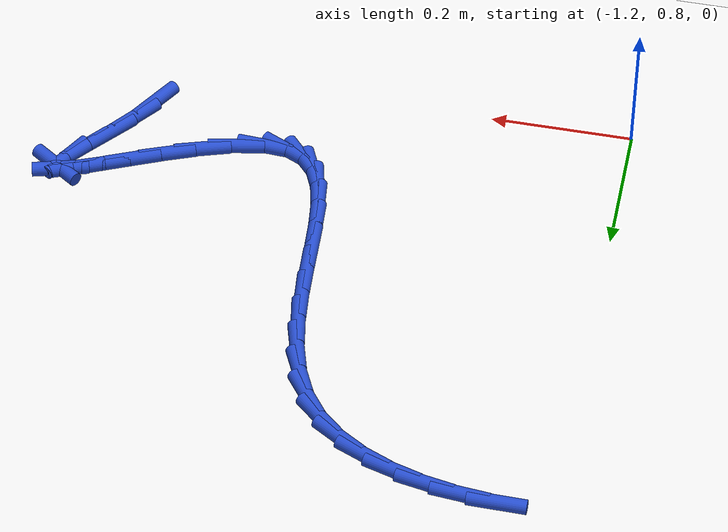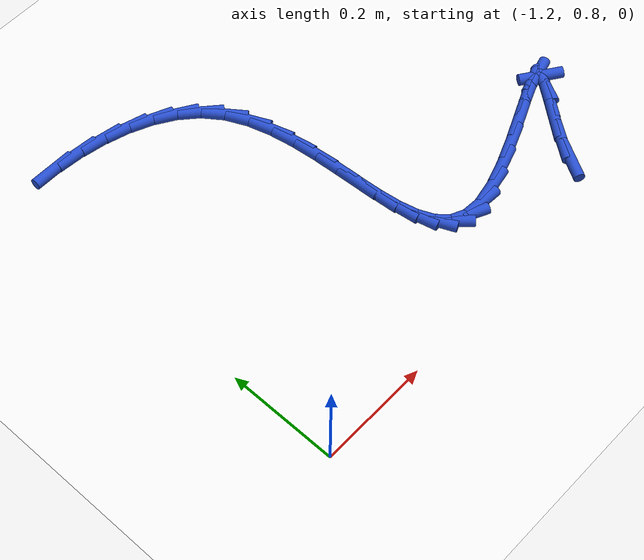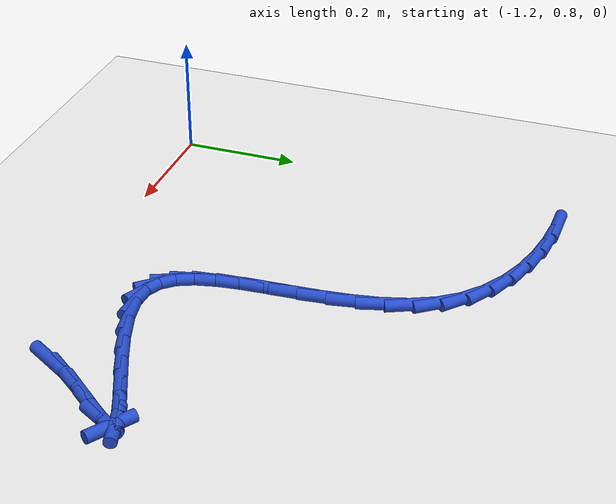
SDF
<sdf version="1.6">
 <world name="default">
  <model name="ground_plane">
   <static>1</static>
   <link name="link">
    <collision name="collision">
     <geometry><plane><normal>0 0 1</normal><size>100 100</size></plane></geometry>
     <surface><friction><ode><mu>100</mu><mu2>50</mu2></ode></friction></surface>
    </collision>
    <visual name="visual">
     <cast_shadows>0</cast_shadows>
     <geometry><plane><normal>0 0 1</normal><size>100 100</size></plane></geometry>
     <material>
      <script><uri>file://media/materials/scripts/gazebo.material</uri><name>Gazebo/WhiteGlow</name></script>
     </material>
    </visual>
   </link>
  </model>
  <model name="line">
   <link name="link_31">
    <pose>-0.5259093899618574 0.8715245335963622 0.01 0 1.57 1.0380452789056749</pose>
    <collision name="collision">
     <geometry><cylinder><radius>0.01</radius><length>0.08</length></cylinder></geometry>
    </collision>
    <visual name="visual">
     <material>
      <script><name>Gazebo/Blue</name><uri>file://media/materials/scripts/gazebo.material</uri></script>
     </material>
     <geometry><cylinder><radius>0.01</radius><length>0.08</length></cylinder></geometry>
    </visual>
   </link>
   <link name="link_32">
    <pose>-0.5056690816337313 0.90585233953516 0.01 0 1.57 0.925611569834618</pose>
    <collision name="collision">
     <geometry><cylinder><radius>0.01</radius><length>0.08</length></cylinder></geometry>
    </collision>
    <visual name="visual">
     <material>
      <script><name>Gazebo/Blue</name><uri>file://media/materials/scripts/gazebo.material</uri></script>
     </material>
     <geometry><cylinder><radius>0.01</radius><length>0.08</length></cylinder></geometry>
    </visual>
   </link>
   <link name="link_33">
    <pose>-0.4786340327649526 0.9417729169115141 0.01 0 1.57 0.8846221475491244</pose>
    <collision name="collision">
     <geometry><cylinder><radius>0.01</radius><length>0.08</length></cylinder></geometry>
    </collision>
    <visual name="visual">
     <material>
      <script><name>Gazebo/Blue</name><uri>file://media/materials/scripts/gazebo.material</uri></script>
     </material>
     <geometry><cylinder><radius>0.01</radius><length>0.08</length></cylinder></geometry>
    </visual>
   </link>
   <link name="link_34">
    <pose>-0.451113894973161 0.975378139658323 0.01 0 1.57 0.9007452691590183</pose>
    <collision name="collision">
     <geometry><cylinder><radius>0.01</radius><length>0.08</length></cylinder></geometry>
    </collision>
    <visual name="visual">
     <material>
      <script><name>Gazebo/Blue</name><uri>file://media/materials/scripts/gazebo.material</uri></script>
     </material>
     <geometry><cylinder><radius>0.01</radius><length>0.08</length></cylinder></geometry>
    </visual>
   </link>
   <link name="link_35">
    <pose>-0.42941831987599555 1.0027598817084835 0.01 0 1.57 1.0646485575879678</pose>
    <collision name="collision">
     <geometry><cylinder><radius>0.01</radius><length>0.08</length></cylinder></geometry>
    </collision>
    <visual name="visual">
     <material>
      <script><name>Gazebo/Blue</name><uri>file://media/materials/scripts/gazebo.material</uri></script>
     </material>
     <geometry><cylinder><radius>0.01</radius><length>0.08</length></cylinder></geometry>
    </visual>
   </link>
   <link name="link_36">
    <pose>-0.41985596835057004 1.020010727504872 0.01 0 1.57 -0.5976320957336914</pose>
    <collision name="collision">
     <geometry><cylinder><radius>0.01</radius><length>0.08</length></cylinder></geometry>
    </collision>
    <visual name="visual">
     <material>
      <script><name>Gazebo/Blue</name><uri>file://media/materials/scripts/gazebo.material</uri></script>
     </material>
     <geometry><cylinder><radius>0.01</radius><length>0.08</length></cylinder></geometry>
    </visual>
   </link>
   <link name="link_37">
    <pose>-0.4267098677380078 1.0246759454191865 0.01 0 1.57 0.2692749755799874</pose>
    <collision name="collision">
     <geometry><cylinder><radius>0.01</radius><length>0.08</length></cylinder></geometry>
    </collision>
    <visual name="visual">
     <material>
      <script><name>Gazebo/Blue</name><uri>file://media/materials/scripts/gazebo.material</uri></script>
     </material>
     <geometry><cylinder><radius>0.01</radius><length>0.08</length></cylinder></geometry>
    </visual>
   </link>
   <link name="link_38">
    <pose>-0.4479818811574569 1.0188053433449307 0.01 0 1.57 0.3935718560412883</pose>
    <collision name="collision">
     <geometry><cylinder><radius>0.01</radius><length>0.08</length></cylinder></geometry>
    </collision>
    <visual name="visual">
     <material>
      <script><name>Gazebo/Blue</name><uri>file://media/materials/scripts/gazebo.material</uri></script>
     </material>
     <geometry><cylinder><radius>0.01</radius><length>0.08</length></cylinder></geometry>
    </visual>
   </link>
   <link name="link_39">
    <pose>-0.480460043892404 1.0053192263104016 0.01 0 1.57 0.422212059788577</pose>
    <collision name="collision">
     <geometry><cylinder><radius>0.01</radius><length>0.08</length></cylinder></geometry>
    </collision>
    <visual name="visual">
     <material>
      <script><name>Gazebo/Blue</name><uri>file://media/materials/scripts/gazebo.material</uri></script>
     </material>
     <geometry><cylinder><radius>0.01</radius><length>0.08</length></cylinder></geometry>
    </visual>
   </link>
   <link name="link_40">
    <pose>-0.5209323912263357 0.9871378993438962 0.01 0 1.57 0.4153252706616437</pose>
    <collision name="collision">
     <geometry><cylinder><radius>0.01</radius><length>0.08</length></cylinder></geometry>
    </collision>
    <visual name="visual">
     <material>
      <script><name>Gazebo/Blue</name><uri>file://media/materials/scripts/gazebo.material</uri></script>
     </material>
     <geometry><cylinder><radius>0.01</radius><length>0.08</length></cylinder></geometry>
    </visual>
   </link>
   <link name="link_41">
    <pose>-0.5661869584427399 0.9671816674737121 0.01 0 1.57 0.38199495099625697</pose>
    <collision name="collision">
     <geometry><cylinder><radius>0.01</radius><length>0.08</length></cylinder></geometry>
    </collision>
    <visual name="visual">
     <material>
      <script><name>Gazebo/Blue</name><uri>file://media/materials/scripts/gazebo.material</uri></script>
     </material>
     <geometry><cylinder><radius>0.01</radius><length>0.08</length></cylinder></geometry>
    </visual>
   </link>
   <link name="link_42">
    <pose>-0.6130117808251029 0.9483708357281462 0.01 0 1.57 0.3154447966175286</pose>
    <collision name="collision">
     <geometry><cylinder><radius>0.01</radius><length>0.08</length></cylinder></geometry>
    </collision>
    <visual name="visual">
     <material>
      <script><name>Gazebo/Blue</name><uri>file://media/materials/scripts/gazebo.material</uri></script>
     </material>
     <geometry><cylinder><radius>0.01</radius><length>0.08</length></cylinder></geometry>
    </visual>
   </link>
   <link name="link_43">
    <pose>-0.6581948936569116 0.9336257091354958 0.01 0 1.57 0.19007090434024412</pose>
    <collision name="collision">
     <geometry><cylinder><radius>0.01</radius><length>0.08</length></cylinder></geometry>
    </collision>
    <visual name="visual">
     <material>
      <script><name>Gazebo/Blue</name><uri>file://media/materials/scripts/gazebo.material</uri></script>
     </material>
     <geometry><cylinder><radius>0.01</radius><length>0.08</length></cylinder></geometry>
    </visual>
   </link>
   <link name="link_44">
    <pose>-0.6985243322216529 0.9258665927240581 0.01 0 1.57 -0.05773627390485298</pose>
    <collision name="collision">
     <geometry><cylinder><radius>0.01</radius><length>0.08</length></cylinder></geometry>
    </collision>
    <visual name="visual">
     <material>
      <script><name>Gazebo/Blue</name><uri>file://media/materials/scripts/gazebo.material</uri></script>
     </material>
     <geometry><cylinder><radius>0.01</radius><length>0.08</length></cylinder></geometry>
    </visual>
   </link>
   <link name="link_45">
    <pose>-0.7310731593778234 0.9277479316556336 0.01 0 1.57 -0.44436669307397236</pose>
    <collision name="collision">
     <geometry><cylinder><radius>0.01</radius><length>0.08</length></cylinder></geometry>
    </collision>
    <visual name="visual">
     <material>
      <script><name>Gazebo/Blue</name><uri>file://media/materials/scripts/gazebo.material</uri></script>
     </material>
     <geometry><cylinder><radius>0.01</radius><length>0.08</length></cylinder></geometry>
    </visual>
   </link>
   <link name="link_46">
    <pose>-0.7555953224692225 0.9394235723645725 0.01 0 1.57 -0.8520096115226901</pose>
    <collision name="collision">
     <geometry><cylinder><radius>0.01</radius><length>0.08</length></cylinder></geometry>
    </collision>
    <visual name="visual">
     <material>
      <script><name>Gazebo/Blue</name><uri>file://media/materials/scripts/gazebo.material</uri></script>
     </material>
     <geometry><cylinder><radius>0.01</radius><length>0.08</length></cylinder></geometry>
    </visual>
   </link>
   <link name="link_47">
    <pose>-0.7733148072370445 0.9596761809281527 0.01 0 1.57 -1.155904057189359</pose>
    <collision name="collision">
     <geometry><cylinder><radius>0.01</radius><length>0.08</length></cylinder></geometry>
    </collision>
    <visual name="visual">
     <material>
      <script><name>Gazebo/Blue</name><uri>file://media/materials/scripts/gazebo.material</uri></script>
     </material>
     <geometry><cylinder><radius>0.01</radius><length>0.08</length></cylinder></geometry>
    </visual>
   </link>
   <link name="link_48">
    <pose>-0.7854706957549521 0.9872743422985744 0.01 0 1.57 -1.3425443921107674</pose>
    <collision name="collision">
     <geometry><cylinder><radius>0.01</radius><length>0.08</length></cylinder></geometry>
    </collision>
    <visual name="visual">
     <material>
      <script><name>Gazebo/Blue</name><uri>file://media/materials/scripts/gazebo.material</uri></script>
     </material>
     <geometry><cylinder><radius>0.01</radius><length>0.08</length></cylinder></geometry>
    </visual>
   </link>
   <link name="link_49">
    <pose>-0.7933020700966062 1.020986641428037 0.01 0 1.57 -1.4484428341530156</pose>
    <collision name="collision">
     <geometry><cylinder><radius>0.01</radius><length>0.08</length></cylinder></geometry>
    </collision>
    <visual name="visual">
     <material>
      <script><name>Gazebo/Blue</name><uri>file://media/materials/scripts/gazebo.material</uri></script>
     </material>
     <geometry><cylinder><radius>0.01</radius><length>0.08</length></cylinder></geometry>
    </visual>
   </link>
   <link name="link_50">
    <pose>-0.7980480123356694 1.059581663268741 0.01 0 1.57 -1.5022684351505027</pose>
    <collision name="collision">
     <geometry><cylinder><radius>0.01</radius><length>0.08</length></cylinder></geometry>
    </collision>
    <visual name="visual">
     <material>
      <script><name>Gazebo/Blue</name><uri>file://media/materials/scripts/gazebo.material</uri></script>
     </material>
     <geometry><cylinder><radius>0.01</radius><length>0.08</length></cylinder></geometry>
    </visual>
   </link>
   <link name="link_51">
    <pose>-0.8009476045458033 1.101827992772886 0.01 0 1.57 -1.5195201103953446</pose>
    <collision name="collision">
     <geometry><cylinder><radius>0.01</radius><length>0.08</length></cylinder></geometry>
    </collision>
    <visual name="visual">
     <material>
      <script><name>Gazebo/Blue</name><uri>file://media/materials/scripts/gazebo.material</uri></script>
     </material>
     <geometry><cylinder><radius>0.01</radius><length>0.08</length></cylinder></geometry>
    </visual>
   </link>
   <link name="link_52">
    <pose>-0.8032399288006696 1.1464942148926724 0.01 0 1.57 -1.5071129028551404</pose>
    <collision name="collision">
     <geometry><cylinder><radius>0.01</radius><length>0.08</length></cylinder></geometry>
    </collision>
    <visual name="visual">
     <material>
      <script><name>Gazebo/Blue</name><uri>file://media/materials/scripts/gazebo.material</uri></script>
     </material>
     <geometry><cylinder><radius>0.01</radius><length>0.08</length></cylinder></geometry>
    </visual>
   </link>
   <link name="link_53">
    <pose>-0.806164067173931 1.1923489145803001 0.01 0 1.57 -1.4665078649283287</pose>
    <collision name="collision">
     <geometry><cylinder><radius>0.01</radius><length>0.08</length></cylinder></geometry>
    </collision>
    <visual name="visual">
     <material>
      <script><name>Gazebo/Blue</name><uri>file://media/materials/scripts/gazebo.material</uri></script>
     </material>
     <geometry><cylinder><radius>0.01</radius><length>0.08</length></cylinder></geometry>
    </visual>
   </link>
   <link name="link_54">
    <pose>-0.8109591017392487 1.238160676787969 0.01 0 1.57 -1.3951341965035355</pose>
    <collision name="collision">
     <geometry><cylinder><radius>0.01</radius><length>0.08</length></cylinder></geometry>
    </collision>
    <visual name="visual">
     <material>
      <script><name>Gazebo/Blue</name><uri>file://media/materials/scripts/gazebo.material</uri></script>
     </material>
     <geometry><cylinder><radius>0.01</radius><length>0.08</length></cylinder></geometry>
    </visual>
   </link>
   <link name="link_55">
    <pose>-0.8188641145702844 1.2826980864678788 0.01 0 1.57 -1.2871152686169394</pose>
    <collision name="collision">
     <geometry><cylinder><radius>0.01</radius><length>0.08</length></cylinder></geometry>
    </collision>
    <visual name="visual">
     <material>
      <script><name>Gazebo/Blue</name><uri>file://media/materials/scripts/gazebo.material</uri></script>
     </material>
     <geometry><cylinder><radius>0.01</radius><length>0.08</length></cylinder></geometry>
    </visual>
   </link>
   <link name="link_56">
    <pose>-0.8311181877407007 1.32472972857223 0.01 0 1.57 -1.1347811718032945</pose>
    <collision name="collision">
     <geometry><cylinder><radius>0.01</radius><length>0.08</length></cylinder></geometry>
    </collision>
    <visual name="visual">
     <material>
      <script><name>Gazebo/Blue</name><uri>file://media/materials/scripts/gazebo.material</uri></script>
     </material>
     <geometry><cylinder><radius>0.01</radius><length>0.08</length></cylinder></geometry>
    </visual>
   </link>
   <link name="link_57">
    <pose>-0.8489604033241588 1.3630241880532217 0.01 0 1.57 -0.9354595386576153</pose>
    <collision name="collision">
     <geometry><cylinder><radius>0.01</radius><length>0.08</length></cylinder></geometry>
    </collision>
    <visual name="visual">
     <material>
      <script><name>Gazebo/Blue</name><uri>file://media/materials/scripts/gazebo.material</uri></script>
     </material>
     <geometry><cylinder><radius>0.01</radius><length>0.08</length></cylinder></geometry>
    </visual>
   </link>
   <link name="link_58">
    <pose>-0.8735633219997162 1.3963921944097935 0.01 0 1.57 -0.7289780125217971</pose>
    <collision name="collision">
     <geometry><cylinder><radius>0.01</radius><length>0.08</length></cylinder></geometry>
    </collision>
    <visual name="visual">
     <material>
      <script><name>Gazebo/Blue</name><uri>file://media/materials/scripts/gazebo.material</uri></script>
     </material>
     <geometry><cylinder><radius>0.01</radius><length>0.08</length></cylinder></geometry>
    </visual>
   </link>
   <link name="link_59">
    <pose>-0.9049171007624246 1.4243935875228912 0.01 0 1.57 -0.5520698152929532</pose>
    <collision name="collision">
     <geometry><cylinder><radius>0.01</radius><length>0.08</length></cylinder></geometry>
    </collision>
    <visual name="visual">
     <material>
      <script><name>Gazebo/Blue</name><uri>file://media/materials/scripts/gazebo.material</uri></script>
     </material>
     <geometry><cylinder><radius>0.01</radius><length>0.08</length></cylinder></geometry>
    </visual>
   </link>
   <link name="link_60">
    <pose>-0.941995394731718 1.4472322107713014 0.01 0 1.57 -0.4051074546597271</pose>
    <collision name="collision">
     <geometry><cylinder><radius>0.01</radius><length>0.08</length></cylinder></geometry>
    </collision>
    <visual name="visual">
     <material>
      <script><name>Gazebo/Blue</name><uri>file://media/materials/scripts/gazebo.material</uri></script>
     </material>
     <geometry><cylinder><radius>0.01</radius><length>0.08</length></cylinder></geometry>
    </visual>
   </link>
   <link name="link_61">
    <pose>-0.9837387559082431 1.4651328799735053 0.01 0 1.57 -0.2829961685948971</pose>
    <collision name="collision">
     <geometry><cylinder><radius>0.01</radius><length>0.08</length></cylinder></geometry>
    </collision>
    <visual name="visual">
     <material>
      <script><name>Gazebo/Blue</name><uri>file://media/materials/scripts/gazebo.material</uri></script>
     </material>
     <geometry><cylinder><radius>0.01</radius><length>0.08</length></cylinder></geometry>
    </visual>
   </link>
   <link name="link_62">
    <pose>-1.0290877362926467 1.4783204109479866 0.01 0 1.57 -0.17967157997380753</pose>
    <collision name="collision">
     <geometry><cylinder><radius>0.01</radius><length>0.08</length></cylinder></geometry>
    </collision>
    <visual name="visual">
     <material>
      <script><name>Gazebo/Blue</name><uri>file://media/materials/scripts/gazebo.material</uri></script>
     </material>
     <geometry><cylinder><radius>0.01</radius><length>0.08</length></cylinder></geometry>
    </visual>
   </link>
   <link name="link_63">
    <pose>-1.0769828878855763 1.487019619513228 0.01 0 1.57 -0.08958407679733345</pose>
    <collision name="collision">
     <geometry><cylinder><radius>0.01</radius><length>0.08</length></cylinder></geometry>
    </collision>
    <visual name="visual">
     <material>
      <script><name>Gazebo/Blue</name><uri>file://media/materials/scripts/gazebo.material</uri></script>
     </material>
     <geometry><cylinder><radius>0.01</radius><length>0.08</length></cylinder></geometry>
    </visual>
   </link>
   <link name="link_64">
    <pose>-1.1263647626876787 1.4914553214877107 0.01 0 1.57 -0.0079704792170866</pose>
    <collision name="collision">
     <geometry><cylinder><radius>0.01</radius><length>0.08</length></cylinder></geometry>
    </collision>
    <visual name="visual">
     <material>
      <script><name>Gazebo/Blue</name><uri>file://media/materials/scripts/gazebo.material</uri></script>
     </material>
     <geometry><cylinder><radius>0.01</radius><length>0.08</length></cylinder></geometry>
    </visual>
   </link>
  </model>
 </world>
</sdf>
